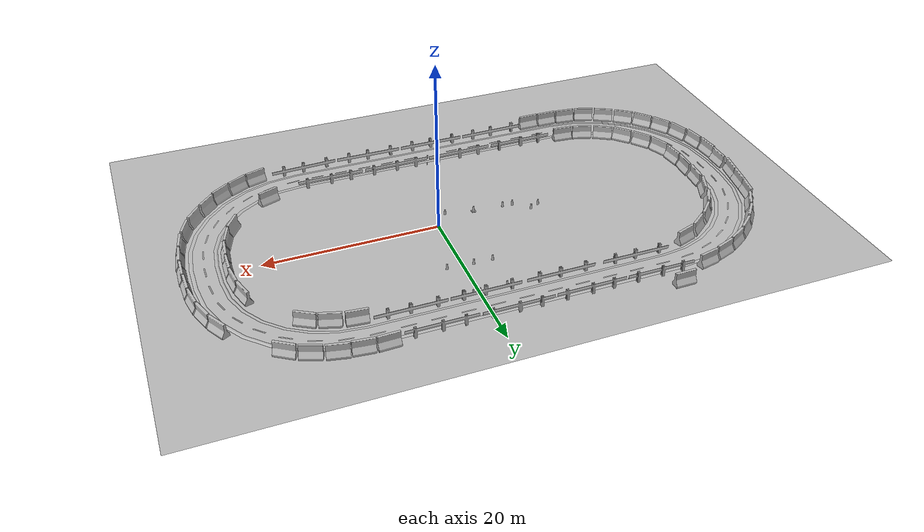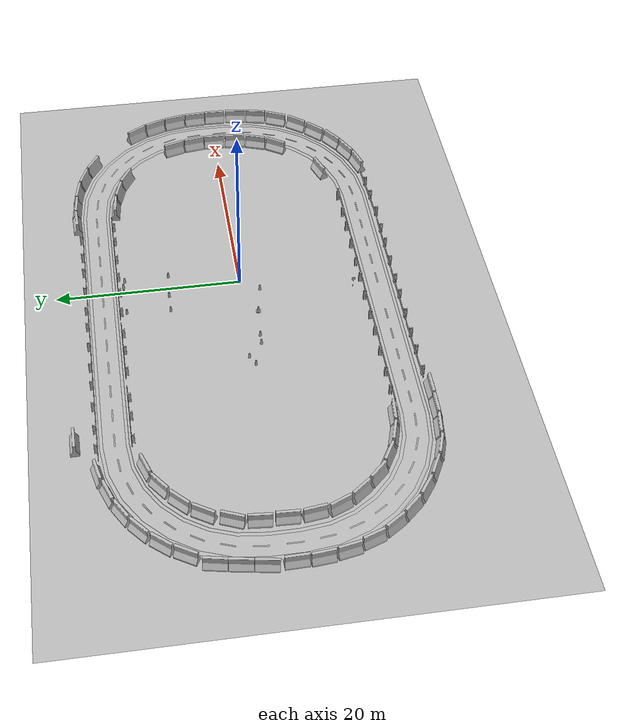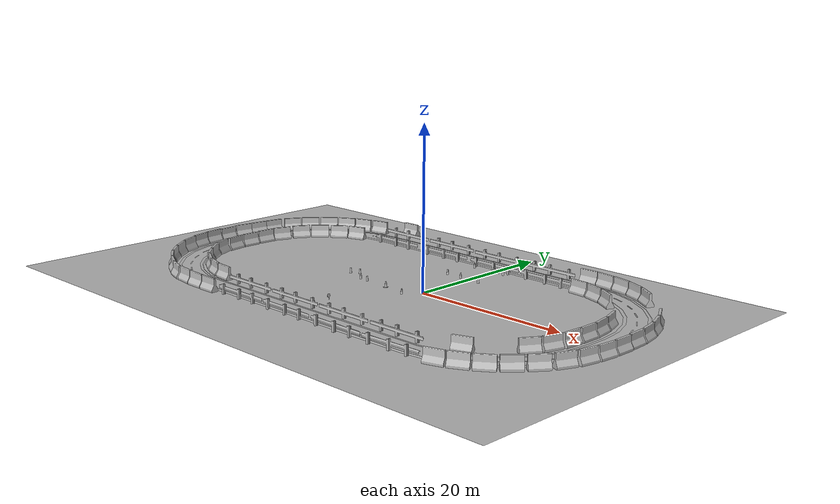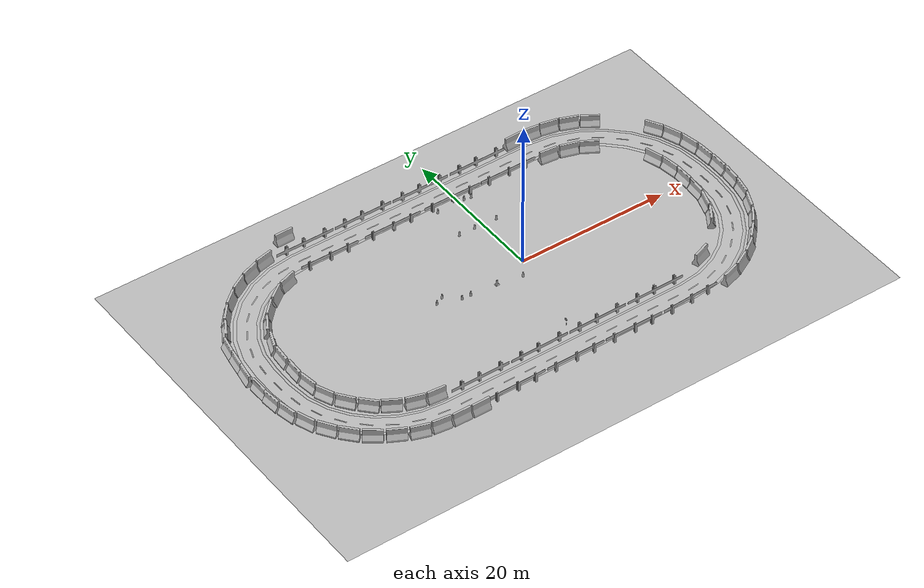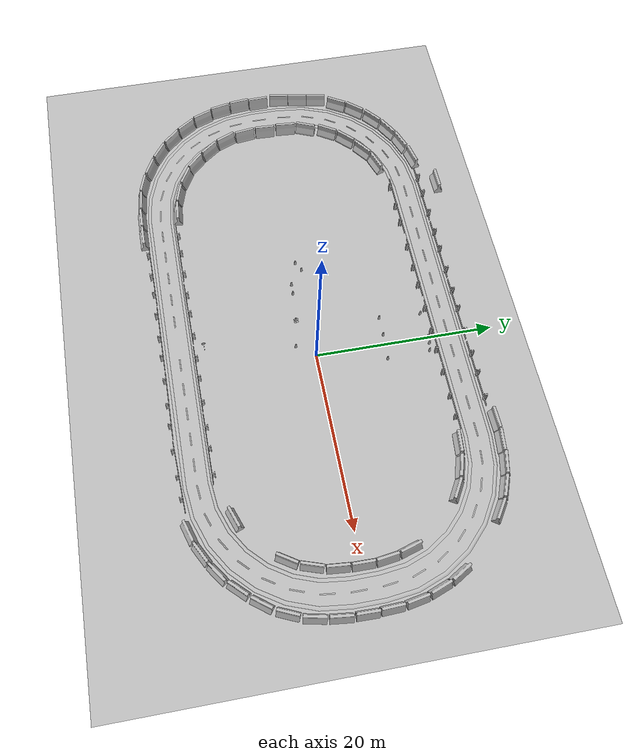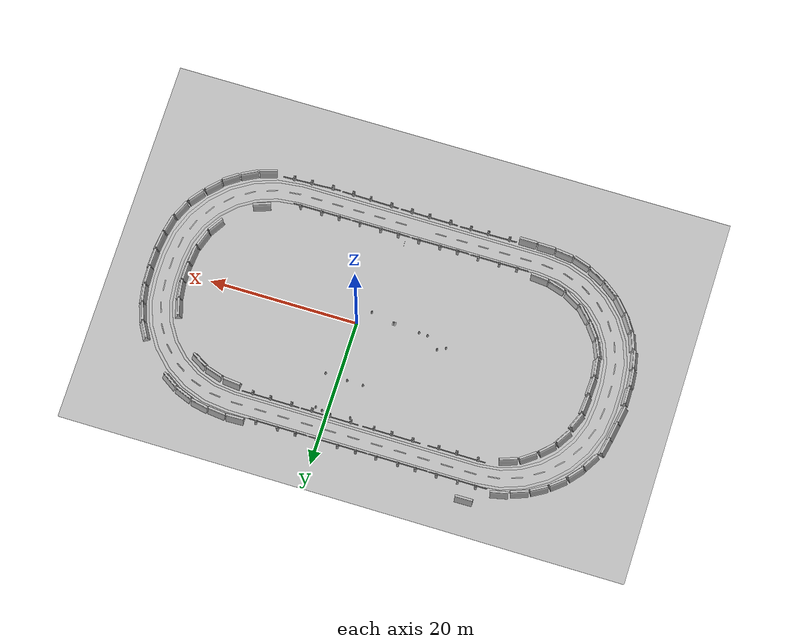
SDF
<sdf version="1.6">
 <world name="default">
  <gravity>0 0 -9.8</gravity>
  <magnetic_field>6e-06 2.3e-05 -4.2e-05</magnetic_field>
  <atmosphere type="adiabatic"/>
  <physics name="default_physics" default="0" type="ode">
   <max_step_size>0.001</max_step_size>
   <real_time_factor>1</real_time_factor>
   <real_time_update_rate>1000</real_time_update_rate>
  </physics>
  <scene><ambient>0.4 0.4 0.4 1</ambient><background>0.7 0.7 0.7 1</background><shadows>1</shadows></scene>
  <spherical_coordinates>
   <surface_model>EARTH_WGS84</surface_model>
   <latitude_deg>0</latitude_deg>
   <longitude_deg>0</longitude_deg>
   <elevation>0</elevation>
   <heading_deg>0</heading_deg>
  </spherical_coordinates>
  <model name="aws_robomaker_racetrack_Fence_01_00">
   <include><uri>model://aws_robomaker_racetrack_Fence_01</uri></include>
   <pose>7.552996 13.158695 0 0 0 -1.57272</pose>
  </model>
  <model name="aws_robomaker_racetrack_Fence_01_01">
   <include><uri>model://aws_robomaker_racetrack_Fence_01</uri></include>
   <pose>-0.500271 13.158695 0 0 0 -1.57272</pose>
  </model>
  <model name="aws_robomaker_racetrack_Fence_01_02">
   <include><uri>model://aws_robomaker_racetrack_Fence_01</uri></include>
   <pose>-8.897229 13.158695 0 0 0 -1.57272</pose>
  </model>
  <model name="aws_robomaker_racetrack_Fence_01_03">
   <include><uri>model://aws_robomaker_racetrack_Fence_01</uri></include>
   <pose>-17.681196 13.158695 0 0 0 -1.57272</pose>
  </model>
  <model name="aws_robomaker_racetrack_Fence_01_04">
   <include><uri>model://aws_robomaker_racetrack_Fence_01</uri></include>
   <pose>-12.990376 -16.857170 0.054 -0.0 0.0 -1.558614</pose>
  </model>
  <model name="aws_robomaker_racetrack_Fence_01_05">
   <include><uri>model://aws_robomaker_racetrack_Fence_01</uri></include>
   <pose>-4.880881 -16.849474 0.054  0 0 -1.572721</pose>
  </model>
  <model name="aws_robomaker_racetrack_Fence_01_06">
   <include><uri>model://aws_robomaker_racetrack_Fence_01</uri></include>
   <pose>3.247635 -16.899557 0.054  0 0 -1.581650</pose>
  </model>
  <model name="aws_robomaker_racetrack_Fence_01_07">
   <include><uri>model://aws_robomaker_racetrack_Fence_01</uri></include>
   <pose>11.364270 -16.813890 0.054  0.0 0.0 -1.525504</pose>
  </model>
  <model name="aws_robomaker_racetrack_Fence_01_08">
   <include><uri>model://aws_robomaker_racetrack_Fence_01</uri></include>
   <pose>-15.529042 -13.134610 0.054 0 -0 1.57158</pose>
  </model>
  <model name="aws_robomaker_racetrack_Fence_01_09">
   <include><uri>model://aws_robomaker_racetrack_Fence_01</uri></include>
   <pose>-7.391050 -13.134610 0.054651 0 0.0 1.580400</pose>
  </model>
  <model name="aws_robomaker_racetrack_Fence_01_10">
   <include><uri>model://aws_robomaker_racetrack_Fence_01</uri></include>
   <pose>0.720398 -13.134610 0.054671 0 -0 1.57158</pose>
  </model>
  <model name="aws_robomaker_racetrack_Fence_01_11">
   <include><uri>model://aws_robomaker_racetrack_Fence_01</uri></include>
   <pose>8.89898 -13.134610 0.054638 0.0 0.0 1.572679</pose>
  </model>
  <model name="aws_robomaker_racetrack_Fence_01_12">
   <include><uri>model://aws_robomaker_racetrack_Fence_01</uri></include>
   <pose>-18.882746 16.818918 0.054  0 -0 1.57158</pose>
  </model>
  <model name="aws_robomaker_racetrack_Fence_01_13">
   <include><uri>model://aws_robomaker_racetrack_Fence_01</uri></include>
   <pose>-10.776134 16.818918 0.054  0 -0 1.57158</pose>
  </model>
  <model name="aws_robomaker_racetrack_Fence_01_14">
   <include><uri>model://aws_robomaker_racetrack_Fence_01</uri></include>
   <pose>-2.679413 16.818918 0 0 -0 1.57158</pose>
  </model>
  <model name="aws_robomaker_racetrack_Fence_01_15">
   <include><uri>model://aws_robomaker_racetrack_Fence_01</uri></include>
   <pose>5.475008 16.818918 0.054  0 -0 1.57158</pose>
  </model>
  <model name="aws_robomaker_racetrack_StonePier_01_00">
   <include><uri>model://aws_robomaker_racetrack_StonePier_01</uri></include>
   <pose>-21.1732 -12.7799 0.054 0 -0 -0.086667</pose>
  </model>
  <model name="aws_robomaker_racetrack_StonePier_01_01">
   <include><uri>model://aws_robomaker_racetrack_StonePier_01</uri></include>
   <pose>-23.6727 -12.2854 0.054 0 -0.0 -0.301631</pose>
  </model>
  <model name="aws_robomaker_racetrack_StonePier_01_03">
   <include><uri>model://aws_robomaker_racetrack_StonePier_01</uri></include>
   <pose>-24.2891 12.2118 0.054 0 -0 0.334226</pose>
  </model>
  <model name="aws_robomaker_racetrack_StonePier_01_04">
   <include><uri>model://aws_robomaker_racetrack_StonePier_01</uri></include>
   <pose>-20.3219 18.8912 0.054 0 -0.0 0.009742</pose>
  </model>
  <model name="aws_robomaker_racetrack_StonePier_01_05">
   <include><uri>model://aws_robomaker_racetrack_StonePier_01</uri></include>
   <pose>11.0892 17.2043 0.054 0 -0.0 0.029389</pose>
  </model>
  <model name="aws_robomaker_racetrack_StonePier_01_06">
   <include><uri>model://aws_robomaker_racetrack_StonePier_01</uri></include>
   <pose>13.5633 17.1121 0.054 0 -0.0 -0.108086</pose>
  </model>
  <model name="aws_robomaker_racetrack_StonePier_01_07">
   <include><uri>model://aws_robomaker_racetrack_StonePier_01</uri></include>
   <pose>16.0013 16.8104 0.054 0 -0.0 -0.206147</pose>
  </model>
  <model name="aws_robomaker_racetrack_StonePier_01_08">
   <include><uri>model://aws_robomaker_racetrack_StonePier_01</uri></include>
   <pose>18.4263 16.0384 0.054 0 -0.0 -0.379591</pose>
  </model>
  <model name="aws_robomaker_racetrack_StonePier_01_09">
   <include><uri>model://aws_robomaker_racetrack_StonePier_01</uri></include>
   <pose>17.8323 11.1467 0.054 0 -0.0 -0.536699</pose>
  </model>
  <model name="aws_robomaker_racetrack_StonePier_01_10">
   <include><uri>model://aws_robomaker_racetrack_StonePier_01</uri></include>
   <pose>22.7563 5.03589 0.054 0 -0.0 -1.28348</pose>
  </model>
  <model name="aws_robomaker_racetrack_StonePier_01_11">
   <include><uri>model://aws_robomaker_racetrack_StonePier_01</uri></include>
   <pose>23.2964 2.57509 0.054 -0 -0.0 -1.43498</pose>
  </model>
  <model name="aws_robomaker_racetrack_StonePier_01_12">
   <include><uri>model://aws_robomaker_racetrack_StonePier_01</uri></include>
   <pose>23.4326 0.10745 0.054 -0 -0.0 -1.58404</pose>
  </model>
  <model name="aws_robomaker_racetrack_StonePier_01_13">
   <include><uri>model://aws_robomaker_racetrack_StonePier_01</uri></include>
   <pose>23.2774 -2.40527 0.054 0 -0.0 -1.65922</pose>
  </model>
  <model name="aws_robomaker_racetrack_StonePier_01_14">
   <include><uri>model://aws_robomaker_racetrack_StonePier_01</uri></include>
   <pose>22.705 -4.89186 0.054 -0 -0.0 -1.88566</pose>
  </model>
  <model name="aws_robomaker_racetrack_StonePier_01_15">
   <include><uri>model://aws_robomaker_racetrack_StonePier_01</uri></include>
   <pose>21.6688 -7.19526 0.054 0 -0.0 -2.13625</pose>
  </model>
  <model name="aws_robomaker_racetrack_StonePier_01_16">
   <include><uri>model://aws_robomaker_racetrack_StonePier_01</uri></include>
   <pose>28.1211 -0.475719 0.054 0 -0.0 -1.59506</pose>
  </model>
  <model name="aws_robomaker_racetrack_StonePier_01_17">
   <include><uri>model://aws_robomaker_racetrack_StonePier_01</uri></include>
   <pose>16.7061 -11.7058 0.054 -0 -0.0 -2.7953</pose>
  </model>
  <model name="aws_robomaker_racetrack_StonePier_01_18">
   <include><uri>model://aws_robomaker_racetrack_StonePier_01</uri></include>
   <pose>28.0027 -3.03906 0.054 0 -0.0 -1.68291</pose>
  </model>
  <model name="aws_robomaker_racetrack_StonePier_01_21">
   <include><uri>model://aws_robomaker_racetrack_StonePier_01</uri></include>
   <pose>17.2914 -16.4156 0.054 0 -0.0 0.298911</pose>
  </model>
  <model name="aws_robomaker_racetrack_StonePier_01_22">
   <include><uri>model://aws_robomaker_racetrack_StonePier_01</uri></include>
   <pose>19.6208 -15.4615 0.054 0 -0.0 0.489077</pose>
  </model>
  <model name="aws_robomaker_racetrack_StonePier_01_23">
   <include><uri>model://aws_robomaker_racetrack_StonePier_01</uri></include>
   <pose>21.7939 -14.1476 0.054 0 -0.0 0.61668</pose>
  </model>
  <model name="aws_robomaker_racetrack_StonePier_01_24">
   <include><uri>model://aws_robomaker_racetrack_StonePier_01</uri></include>
   <pose>23.6698 -12.3608 0.054 0 -0.0 0.810318</pose>
  </model>
  <model name="aws_robomaker_racetrack_StonePier_01_25">
   <include><uri>model://aws_robomaker_racetrack_StonePier_01</uri></include>
   <pose>25.3929 -10.3347 0.054 -0 -0.0 0.931507</pose>
  </model>
  <model name="aws_robomaker_racetrack_StonePier_01_26">
   <include><uri>model://aws_robomaker_racetrack_StonePier_01</uri></include>
   <pose>27.7466 4.53211 0.054 0 -0.0 1.75246</pose>
  </model>
  <model name="aws_robomaker_racetrack_StonePier_01_27">
   <include><uri>model://aws_robomaker_racetrack_StonePier_01</uri></include>
   <pose>27.0691 6.99271 0.054 0 -0.0 1.91654</pose>
  </model>
  <model name="aws_robomaker_racetrack_StonePier_01_28">
   <include><uri>model://aws_robomaker_racetrack_StonePier_01</uri></include>
   <pose>26.0366 9.29805 0.054 0 -0.0 2.08782</pose>
  </model>
  <model name="aws_robomaker_racetrack_StonePier_01_29">
   <include><uri>model://aws_robomaker_racetrack_StonePier_01</uri></include>
   <pose>26.7385 -7.99231 0.054 -0 -0.0 1.16098</pose>
  </model>
  <model name="aws_robomaker_racetrack_StonePier_01_30">
   <include><uri>model://aws_robomaker_racetrack_StonePier_01</uri></include>
   <pose>27.5962 -5.54706 0.054 0 -0.0 1.36231</pose>
  </model>
  <model name="aws_robomaker_racetrack_StonePier_01_31">
   <include><uri>model://aws_robomaker_racetrack_StonePier_01</uri></include>
   <pose>28.0314 1.9989 0.054 0 -0.0 -1.53351</pose>
  </model>
  <model name="aws_robomaker_racetrack_StonePier_01_32">
   <include><uri>model://aws_robomaker_racetrack_StonePier_01</uri></include>
   <pose>20.6714 14.8473 0.054 0 -0.0 -0.587598</pose>
  </model>
  <model name="aws_robomaker_racetrack_StonePier_01_33">
   <include><uri>model://aws_robomaker_racetrack_StonePier_01</uri></include>
   <pose>12.9654 12.6879 0.054 0 -0.0 -0.096781</pose>
  </model>
  <model name="aws_robomaker_racetrack_StonePier_01_34">
   <include><uri>model://aws_robomaker_racetrack_StonePier_01</uri></include>
   <pose>15.5357 12.1477 0.054 -0 0.00036 -0.29956</pose>
  </model>
  <model name="aws_robomaker_racetrack_StonePier_01_36">
   <include><uri>model://aws_robomaker_racetrack_StonePier_01</uri></include>
   <pose>-26.5946 11.0295 0.054 0 0.00036 0.646791</pose>
  </model>
  <model name="aws_robomaker_racetrack_StonePier_01_37">
   <include><uri>model://aws_robomaker_racetrack_StonePier_01</uri></include>
   <pose>-24.4271 16.8105 0.054 -0 -0.0 0.217772</pose>
  </model>
  <model name="aws_robomaker_racetrack_StonePier_01_38">
   <include><uri>model://aws_robomaker_racetrack_StonePier_01</uri></include>
   <pose>-28.6752 9.30494 0.054 0 -0.0 0.789682</pose>
  </model>
  <model name="aws_robomaker_racetrack_StonePier_01_39">
   <include><uri>model://aws_robomaker_racetrack_StonePier_01</uri></include>
   <pose>-30.2584 7.24451 0.054 -0 -0.0 1.02306</pose>
  </model>
  <model name="aws_robomaker_racetrack_StonePier_01_40">
   <include><uri>model://aws_robomaker_racetrack_StonePier_01</uri></include>
   <pose>-18.3212 -17.1986 0.054 0 -0.0 -0.000165</pose>
  </model>
  <model name="aws_robomaker_racetrack_StonePier_01_41">
   <include><uri>model://aws_robomaker_racetrack_StonePier_01</uri></include>
   <pose>-26.1157 -11.2238 0.054 0 -0.0 -0.528829</pose>
  </model>
  <model name="aws_robomaker_racetrack_StonePier_01_42">
   <include><uri>model://aws_robomaker_racetrack_StonePier_01</uri></include>
   <pose>-28.1466 -9.75745 0.054 0 -0.0 -0.811127</pose>
  </model>
  <model name="aws_robomaker_racetrack_StonePier_01_43">
   <include><uri>model://aws_robomaker_racetrack_StonePier_01</uri></include>
   <pose>-29.8572 -7.79098 0.054 0 -0.0 -0.924577</pose>
  </model>
  <model name="aws_robomaker_racetrack_StonePier_01_44">
   <include><uri>model://aws_robomaker_racetrack_StonePier_01</uri></include>
   <pose>-31.1336 -5.56451 0.054 0 -0.0 -1.16956</pose>
  </model>
  <model name="aws_robomaker_racetrack_StonePier_01_45">
   <include><uri>model://aws_robomaker_racetrack_StonePier_01</uri></include>
   <pose>-31.6395 -3.07904 0.054 -0 -0.0 -1.43795</pose>
  </model>
  <model name="aws_robomaker_racetrack_StonePier_01_46">
   <include><uri>model://aws_robomaker_racetrack_StonePier_01</uri></include>
   <pose>-31.7709 -0.48849 0.054 0 -0.0 -1.61074</pose>
  </model>
  <model name="aws_robomaker_racetrack_StonePier_01_47">
   <include><uri>model://aws_robomaker_racetrack_StonePier_01</uri></include>
   <pose>-31.7363 2.12666 0.054 0 -0.0 -1.64853</pose>
  </model>
  <model name="aws_robomaker_racetrack_StonePier_01_48">
   <include><uri>model://aws_robomaker_racetrack_StonePier_01</uri></include>
   <pose>-31.2901 4.63965 0.054 -0 -0.0 -1.9545</pose>
  </model>
  <model name="aws_robomaker_racetrack_StonePier_01_52">
   <include><uri>model://aws_robomaker_racetrack_StonePier_01</uri></include>
   <pose>-28.2666 -15.3279 0.054 0 0.00036 -0.483595</pose>
  </model>
  <model name="aws_robomaker_racetrack_StonePier_01_53">
   <include><uri>model://aws_robomaker_racetrack_StonePier_01</uri></include>
   <pose>-30.4813 -13.931 0.054 0 -0.0 2.50624</pose>
  </model>
  <model name="aws_robomaker_racetrack_StonePier_01_54">
   <include><uri>model://aws_robomaker_racetrack_StonePier_01</uri></include>
   <pose>-32.3931 -12.181 0.054 0 -0.0 2.30053</pose>
  </model>
  <model name="aws_robomaker_racetrack_StonePier_01_55">
   <include><uri>model://aws_robomaker_racetrack_StonePier_01</uri></include>
   <pose>-33.9725 -10.1825 0.054 0 -0.0 2.15404</pose>
  </model>
  <model name="aws_robomaker_racetrack_StonePier_01_56">
   <include><uri>model://aws_robomaker_racetrack_StonePier_01</uri></include>
   <pose>-35.2144 -7.92381 0.054 0 -0.0 1.91826</pose>
  </model>
  <model name="aws_robomaker_racetrack_StonePier_01_57">
   <include><uri>model://aws_robomaker_racetrack_StonePier_01</uri></include>
   <pose>-36.4999 -3.03273 0.054 -0 0.00036 -1.47965</pose>
  </model>
  <model name="aws_robomaker_racetrack_StonePier_01_58">
   <include><uri>model://aws_robomaker_racetrack_StonePier_01</uri></include>
   <pose>-36.5369 -0.578473 -0.000468 -0 0.000348 1.59189</pose>
  </model>
  <model name="aws_robomaker_racetrack_StonePier_01_59">
   <include><uri>model://aws_robomaker_racetrack_StonePier_01</uri></include>
   <pose>-36.0789 -5.53149 0.054 0 -0.0 1.76121</pose>
  </model>
  <model name="aws_robomaker_racetrack_StonePier_01_60">
   <include><uri>model://aws_robomaker_racetrack_StonePier_01</uri></include>
   <pose>-36.5742 2.13483 -4.9e-05 -4.8e-05 -6.2e-05 1.40891</pose>
  </model>
  <model name="aws_robomaker_racetrack_StonePier_01_61">
   <include><uri>model://aws_robomaker_racetrack_StonePier_01</uri></include>
   <pose>-36.1891 4.48288 0.000698 -7e-05 -0.000662 1.40758</pose>
  </model>
  <model name="aws_robomaker_racetrack_StonePier_01_62">
   <include><uri>model://aws_robomaker_racetrack_StonePier_01</uri></include>
   <pose>-35.7706 6.79941 0.00067 5.5e-05 0.000534 1.37633</pose>
  </model>
  <model name="aws_robomaker_racetrack_StonePier_01_63">
   <include><uri>model://aws_robomaker_racetrack_StonePier_01</uri></include>
   <pose>-34.5101 9.28526 0.054 0 -0.0 1.03684</pose>
  </model>
  <model name="aws_robomaker_racetrack_StonePier_01_64">
   <include><uri>model://aws_robomaker_racetrack_StonePier_01</uri></include>
   <pose>-33.1083 11.4014 0.054 0 -0.0 0.877747</pose>
  </model>
  <model name="aws_robomaker_racetrack_StonePier_01_65">
   <include><uri>model://aws_robomaker_racetrack_StonePier_01</uri></include>
   <pose>-31.2882 13.312 0.054 -0 -0.0 0.701782</pose>
  </model>
  <model name="aws_robomaker_racetrack_StonePier_01_66">
   <include><uri>model://aws_robomaker_racetrack_StonePier_01</uri></include>
   <pose>-29.1909 14.829 0.054 0 -0.0 0.529025</pose>
  </model>
  <model name="aws_robomaker_racetrack_StonePier_01_67">
   <include><uri>model://aws_robomaker_racetrack_StonePier_01</uri></include>
   <pose>-26.9181 15.9588 0.054 0 -0.0 0.349577</pose>
  </model>
  <model name="aws_robomaker_racetrack_StonePier_01_68">
   <include><uri>model://aws_robomaker_racetrack_StonePier_01</uri></include>
   <pose>-20.8526 -17.1365 0.054 -0 0.00036 -0.016586</pose>
  </model>
  <model name="aws_robomaker_racetrack_StonePier_01_69">
   <include><uri>model://aws_robomaker_racetrack_StonePier_01</uri></include>
   <pose>-23.3756 -16.9024 0.054 0 -0.0 -0.119704</pose>
  </model>
  <model name="aws_robomaker_racetrack_StonePier_01_70">
   <include><uri>model://aws_robomaker_racetrack_StonePier_01</uri></include>
   <pose>-25.8909 -16.4126 0.054 0 -0.0 -0.32217</pose>
  </model>
  <model name="aws_robomaker_racetrack_StopSign_01_00">
   <include><uri>model://aws_robomaker_racetrack_StopSign_01</uri></include>
   <pose>-2.7487 -12.1054 0.000775 0.075944 0.005053 -1.56731</pose>
  </model>
  <model name="aws_robomaker_racetrack_Track_05_00">
   <include><uri>model://aws_robomaker_racetrack_Track_05</uri></include>
   <pose>0 0 0.051 0 -0 0</pose>
  </model>
  <model name="aws_robomaker_racetrack_Trackline_01_00">
   <include><uri>model://aws_robomaker_racetrack_Trackline_01</uri></include>
   <pose>-4.24539 0 0.102 0 -0 0</pose>
  </model>
  <model name="aws_robomaker_racetrack_TrafficCone_01_00">
   <include><uri>model://aws_robomaker_racetrack_TrafficCone_01</uri></include>
   <pose>-9.379170 -1.123267 0 0 -0 0</pose>
  </model>
  <model name="aws_robomaker_racetrack_TrafficCone_01_01">
   <include><uri>model://aws_robomaker_racetrack_TrafficCone_01</uri></include>
   <pose>-12.1926 -0.169504 0 0 -0 0</pose>
  </model>
  <model name="aws_robomaker_racetrack_TrafficCone_01_02">
   <include><uri>model://aws_robomaker_racetrack_TrafficCone_01</uri></include>
   <pose>-11.1147 0.36652 0 0 -0 0</pose>
  </model>
  <model name="aws_robomaker_racetrack_TrafficCone_01_03">
   <include><uri>model://aws_robomaker_racetrack_TrafficCone_01</uri></include>
   <pose>-8.204195 -1.168056 0 0 -0 0</pose>
  </model>
  <model name="aws_robomaker_racetrack_TrafficCone_01_05">
   <include><uri>model://aws_robomaker_racetrack_TrafficCone_01</uri></include>
   <pose>1.63274 12.4879 0 0 -0 0</pose>
  </model>
  <model name="aws_robomaker_racetrack_TrafficCone_01_06">
   <include><uri>model://aws_robomaker_racetrack_TrafficCone_01</uri></include>
   <pose>0.741449 12.6798 0 0 -0 0</pose>
  </model>
  <model name="aws_robomaker_racetrack_TrafficCone_01_07">
   <include><uri>model://aws_robomaker_racetrack_TrafficCone_01</uri></include>
   <pose>-0.041804 12.6793 0 0 -0 0</pose>
  </model>
  <model name="aws_robomaker_racetrack_TrafficCone_01_08">
   <include><uri>model://aws_robomaker_racetrack_TrafficCone_01</uri></include>
   <pose>-1.478687 -2.047922 0 0 0 0</pose>
  </model>
  <model name="aws_robomaker_racetrack_TrafficCone_01_09">
   <include><uri>model://aws_robomaker_racetrack_TrafficCone_01</uri></include>
   <pose>-3.07094 12.5681 0 0 -0 0</pose>
  </model>
  <model name="aws_robomaker_racetrack_TrafficCone_01_10">
   <include><uri>model://aws_robomaker_racetrack_TrafficCone_01</uri></include>
   <pose>-4.721023 -1.439288 0.054 0 -0 0</pose>
  </model>
  <model name="aws_robomaker_racetrack_TrafficCone_01_11">
   <include><uri>model://aws_robomaker_racetrack_TrafficCone_01</uri></include>
   <pose>-1.18613 7.84487 0 0 -0 0</pose>
  </model>
  <model name="aws_robomaker_racetrack_TrafficCone_01_12">
   <include><uri>model://aws_robomaker_racetrack_TrafficCone_01</uri></include>
   <pose>-3.3402 7.8678 0 0 -0 0</pose>
  </model>
  <model name="aws_robomaker_racetrack_TrafficCone_01_13">
   <include><uri>model://aws_robomaker_racetrack_TrafficCone_01</uri></include>
   <pose>1.78217 7.69024 0 0 -0 0</pose>
  </model>
  <model name="aws_robomaker_racetrack_Ground_01_00">
   <include><uri>model://aws_robomaker_racetrack_Ground_01</uri></include>
   <pose>-4.9 -2 0.05 0 -0 0</pose>
  </model>
  <model name="ground_plane">
   <pose>0 0 -1 0 -0 0</pose>
   <scale>1 1 1</scale>
   <link name="link">
    <pose>0 0 -1 0 -0 0</pose>
    <velocity>0 0 0 0 -0 0</velocity>
    <acceleration>0 0 0 0 -0 0</acceleration>
   </link>
  </model>
  <light name="sun" type="directional">
   <pose>0 0 10 0 0 0</pose>
   <diffuse>1 1 1 1</diffuse>
   <specular>1 1 1 1</specular>
   <attenuation>
    <range>1000</range>
    <constant>0.9</constant>
    <linear>0.01</linear>
    <quadratic>0.001</quadratic>
   </attenuation>
   <direction>-0.5 0.1 -0.9</direction>
  </light>
  <light name="sun2" type="directional">
   <pose>0 0 10 0 0 0</pose>
   <diffuse>1 1 1 1</diffuse>
   <specular>1 1 1 1</specular>
   <attenuation>
    <range>1000</range>
    <constant>0.9</constant>
    <linear>0.01</linear>
    <quadratic>0.001</quadratic>
   </attenuation>
   <direction>-0.5 0.1 -0.9</direction>
  </light>
 </world>
</sdf>

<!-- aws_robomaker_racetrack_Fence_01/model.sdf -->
<sdf version='1.6'>
  <model name='aws_Fence_01'>
    <link name='body'>
      <pose frame=''>0 0 0 0 -0 0</pose>
      <self_collide>0</self_collide>
      <kinematic>0</kinematic>
      <gravity>1</gravity>
      <inertial>
        <mass>5</mass>
        <pose frame=''>0 0 0 0 -0 0</pose>
        <inertia>
          <ixx>1</ixx>
          <ixy>0</ixy>
          <ixz>0</ixz>
          <iyy>1</iyy>
          <iyz>0</iyz>
          <izz>1</izz>
        </inertia>
      </inertial>
      <visual name='visual'>
        <geometry>
          <mesh>
            <uri>file://models/aws_robomaker_racetrack_Fence_01/meshes/aws_Fence_01_visual.obj</uri>
            <scale>0.01 0.01 0.01</scale>
          </mesh>
        </geometry>
        <material>
          <shader type='pixel'>
            <normal_map>__default__</normal_map>
          </shader>
        </material>
        <pose frame=''>0 0 0 0 -0 0</pose>
        <cast_shadows>1</cast_shadows>
        <transparency>0</transparency>
        <meta>
          <layer>0</layer>
        </meta>
      </visual>
      <collision name='collision_0'>
        <laser_retro>0</laser_retro>
        <max_contacts>10</max_contacts>
        <pose frame=''>0 0 0 0 -0 0</pose>
        <geometry>
          <mesh>
            <uri>file://models/aws_robomaker_racetrack_Fence_01/meshes/aws_Fence_01_collision.obj</uri>
            <scale>0.01 0.01 0.01</scale>
          </mesh>
        </geometry>
        <surface>
          <friction>
            <ode>
              <mu>1</mu>
              <mu2>1</mu2>
              <fdir1>0 0 0</fdir1>
              <slip1>0</slip1>
              <slip2>0</slip2>
            </ode>
            <torsional>
              <coefficient>1</coefficient>
              <patch_radius>0</patch_radius>
              <surface_radius>0</surface_radius>
              <use_patch_radius>1</use_patch_radius>
              <ode>
                <slip>0</slip>
              </ode>
            </torsional>
          </friction>
          <bounce>
            <restitution_coefficient>0</restitution_coefficient>
            <threshold>1e+06</threshold>
          </bounce>
          <contact>
            <collide_without_contact>0</collide_without_contact>
            <collide_without_contact_bitmask>1</collide_without_contact_bitmask>
            <collide_bitmask>1</collide_bitmask>
            <ode>
              <soft_cfm>0</soft_cfm>
              <soft_erp>0.2</soft_erp>
              <kp>1e+13</kp>
              <kd>1</kd>
              <max_vel>0.01</max_vel>
              <min_depth>0</min_depth>
            </ode>
            <bullet>
              <split_impulse>1</split_impulse>
              <split_impulse_penetration_threshold>-0.01</split_impulse_penetration_threshold>
              <soft_cfm>0</soft_cfm>
              <soft_erp>0.2</soft_erp>
              <kp>1e+13</kp>
              <kd>1</kd>
            </bullet>
          </contact>
        </surface>
      </collision>
    </link>
<static>true</static>
  </model>
</sdf>

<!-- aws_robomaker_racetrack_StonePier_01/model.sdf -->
<sdf version='1.6'>
  <model name='aws_StonePier_01'>
    <link name='body'>
      <pose frame=''>0 0 0 0 -0 0</pose>
      <self_collide>0</self_collide>
      <kinematic>0</kinematic>
      <gravity>1</gravity>
      <inertial>
        <mass>10</mass>
        <pose frame=''>0 0 0 0 -0 0</pose>
        <inertia>
          <ixx>0</ixx>
          <ixy>0</ixy>
          <ixz>0</ixz>
          <iyy>0</iyy>
          <iyz>0</iyz>
          <izz>0</izz>
        </inertia>
      </inertial>
      <visual name='visual'>
        <geometry>
          <mesh>
            <uri>file://models/aws_robomaker_racetrack_StonePier_01/meshes/aws_StonePier_01_visual.obj</uri>
            <scale>0.01 0.01 0.01</scale>
          </mesh>
        </geometry>
        <material>
          <shader type='pixel'>
            <normal_map>__default__</normal_map>
          </shader>
        </material>
        <pose frame=''>0 0 0 0 -0 0</pose>
        <cast_shadows>1</cast_shadows>
        <transparency>0</transparency>
        <meta>
          <layer>0</layer>
        </meta>
      </visual>
      <collision name='collision_0'>
        <laser_retro>0</laser_retro>
        <max_contacts>10</max_contacts>
        <pose frame=''>0 0 0 0 -0 0</pose>
        <geometry>
          <mesh>
            <uri>file://models/aws_robomaker_racetrack_StonePier_01/meshes/aws_StonePier_01_collision.obj</uri>
            <scale>0.01 0.01 0.01</scale>
          </mesh>
        </geometry>
        <surface>
          <friction>
            <ode>
              <mu>1</mu>
              <mu2>1</mu2>
              <fdir1>0 0 0</fdir1>
              <slip1>0</slip1>
              <slip2>0</slip2>
            </ode>
            <torsional>
              <coefficient>1</coefficient>
              <patch_radius>0</patch_radius>
              <surface_radius>0</surface_radius>
              <use_patch_radius>1</use_patch_radius>
              <ode>
                <slip>0</slip>
              </ode>
            </torsional>
          </friction>
          <bounce>
            <restitution_coefficient>0</restitution_coefficient>
            <threshold>1e+06</threshold>
          </bounce>
          <contact>
            <collide_without_contact>0</collide_without_contact>
            <collide_without_contact_bitmask>1</collide_without_contact_bitmask>
            <collide_bitmask>1</collide_bitmask>
            <ode>
              <soft_cfm>0</soft_cfm>
              <soft_erp>0.2</soft_erp>
              <kp>1e+13</kp>
              <kd>1</kd>
              <max_vel>0.01</max_vel>
              <min_depth>0</min_depth>
            </ode>
            <bullet>
              <split_impulse>1</split_impulse>
              <split_impulse_penetration_threshold>-0.01</split_impulse_penetration_threshold>
              <soft_cfm>0</soft_cfm>
              <soft_erp>0.2</soft_erp>
              <kp>1e+13</kp>
              <kd>1</kd>
            </bullet>
          </contact>
        </surface>
      </collision>
    </link>
  <static>1</static>
  </model>
</sdf>

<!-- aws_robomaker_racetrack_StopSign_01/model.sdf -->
<sdf version='1.6'>
  <model name='aws_StopSign_01'>
    <link name='body'>
      <pose frame=''>0 0 0 0 -0 0</pose>
      <self_collide>0</self_collide>
      <kinematic>0</kinematic>
      <gravity>1</gravity>
      <inertial>
        <mass>2</mass>
        <pose frame=''>0 0 0 0 -0 0</pose>
        <inertia>
          <ixx>1</ixx>
          <ixy>0</ixy>
          <ixz>0</ixz>
          <iyy>1</iyy>
          <iyz>0</iyz>
          <izz>1</izz>
        </inertia>
      </inertial>
      <visual name='visual'>
        <geometry>
          <mesh>
            <uri>file://models/aws_robomaker_racetrack_StopSign_01/meshes/aws_StopSign_01_visual.obj</uri>
            <scale>0.01 0.01 0.01</scale>
          </mesh>
        </geometry>
        <material>
          <shader type='pixel'>
            <normal_map>__default__</normal_map>
          </shader>
        </material>
        <pose frame=''>0 0 0 0 -0 0</pose>
        <cast_shadows>1</cast_shadows>
        <transparency>0</transparency>
        <meta>
          <layer>0</layer>
        </meta>
      </visual>
      <collision name='collision_0'>
        <laser_retro>0</laser_retro>
        <max_contacts>10</max_contacts>
        <pose frame=''>0 0 0 0 -0 0</pose>
        <geometry>
          <mesh>
            <uri>file://models/aws_robomaker_racetrack_StopSign_01/meshes/aws_StopSign_01_collision.obj</uri>
            <scale>0.01 0.01 0.01</scale>
          </mesh>
        </geometry>
        <surface>
          <friction>
            <ode>
              <mu>1</mu>
              <mu2>1</mu2>
              <fdir1>0 0 0</fdir1>
              <slip1>0</slip1>
              <slip2>0</slip2>
            </ode>
            <torsional>
              <coefficient>1</coefficient>
              <patch_radius>0</patch_radius>
              <surface_radius>0</surface_radius>
              <use_patch_radius>1</use_patch_radius>
              <ode>
                <slip>0</slip>
              </ode>
            </torsional>
          </friction>
          <bounce>
            <restitution_coefficient>0</restitution_coefficient>
            <threshold>1e+06</threshold>
          </bounce>
          <contact>
            <collide_without_contact>0</collide_without_contact>
            <collide_without_contact_bitmask>1</collide_without_contact_bitmask>
            <collide_bitmask>1</collide_bitmask>
            <ode>
              <soft_cfm>0</soft_cfm>
              <soft_erp>0.2</soft_erp>
              <kp>1e+13</kp>
              <kd>1</kd>
              <max_vel>0.01</max_vel>
              <min_depth>0</min_depth>
            </ode>
            <bullet>
              <split_impulse>1</split_impulse>
              <split_impulse_penetration_threshold>-0.01</split_impulse_penetration_threshold>
              <soft_cfm>0</soft_cfm>
              <soft_erp>0.2</soft_erp>
              <kp>1e+13</kp>
              <kd>1</kd>
            </bullet>
          </contact>
        </surface>
      </collision>
    </link>
    <static>true</static>
  </model>
</sdf>

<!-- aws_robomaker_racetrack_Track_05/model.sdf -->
<sdf version='1.6'>

  <model name='aws_Track_05_border'>

     <link name='body_border'>
      <pose frame=''>0 0 0 0 -0 0</pose>
      <self_collide>0</self_collide>
      <kinematic>0</kinematic>
      <gravity>1</gravity>
      <inertial>
        <mass>1000</mass>
        <pose frame=''>0 0 0 0 -0 0</pose>
        <inertia>
          <ixx>1</ixx>
          <ixy>0</ixy>
          <ixz>0</ixz>
          <iyy>1</iyy>
          <iyz>0</iyz>
          <izz>1</izz>
        </inertia>
      </inertial>
      <visual name='visual'>
        <geometry>
          <mesh>
            <uri>file://models/aws_robomaker_racetrack_Track_05/meshes/aws_Track_05_visual_border.obj</uri>
            <scale>1 1 1</scale>
          </mesh>
        </geometry>
        <material>
          <shader type='pixel'>
            <normal_map>__default__</normal_map>
          </shader>
        </material>
        <pose frame=''>0 0 0 0 -0 0</pose>
        <cast_shadows>1</cast_shadows>
        <transparency>0</transparency>
        <meta>
          <layer>0</layer>
        </meta>
      </visual>

       <collision name='collision_0'>
        <laser_retro>0</laser_retro>
        <max_contacts>10</max_contacts>
        <pose frame=''>0 0 0 0 -0 0</pose>
        <geometry>
          <mesh>
            <uri>file://models/aws_robomaker_racetrack_Track_05/meshes/aws_Track_05_visual_border.obj</uri>
            <scale>1 1 1</scale>
          </mesh>
        </geometry>
        <surface>
          <friction>
            <ode>
              <mu>1</mu>
              <mu2>1</mu2>
              <fdir1>0 0 0</fdir1>
              <slip1>0</slip1>
              <slip2>0</slip2>
            </ode>
            <torsional>
              <coefficient>1</coefficient>
              <patch_radius>0</patch_radius>
              <surface_radius>0</surface_radius>
              <use_patch_radius>1</use_patch_radius>
              <ode>
                <slip>0</slip>
              </ode>
            </torsional>
          </friction>
          <bounce>
            <restitution_coefficient>0</restitution_coefficient>
            <threshold>1e+06</threshold>
          </bounce>
          <contact>
            <collide_without_contact>0</collide_without_contact>
            <collide_without_contact_bitmask>1</collide_without_contact_bitmask>
            <collide_bitmask>1</collide_bitmask>
            <ode>
              <soft_cfm>0</soft_cfm>
              <soft_erp>0.2</soft_erp>
              <kp>1e+13</kp>
              <kd>1</kd>
              <max_vel>0.01</max_vel>
              <min_depth>0</min_depth>
            </ode>
            <bullet>
              <split_impulse>1</split_impulse>
              <split_impulse_penetration_threshold>-0.01</split_impulse_penetration_threshold>
              <soft_cfm>0</soft_cfm>
              <soft_erp>0.2</soft_erp>
              <kp>1e+13</kp>
              <kd>1</kd>
            </bullet>
          </contact>
        </surface>
      </collision>

    </link>
  </model>

   <model name='aws_Track_05_border'>

     <link name='body_border'>
      <pose frame=''>0 0 0 0 -0 0</pose>
      <self_collide>0</self_collide>
      <kinematic>0</kinematic>
      <gravity>1</gravity>
      <inertial>
        <mass>1000</mass>
        <pose frame=''>0 0 0 0 -0 0</pose>
        <inertia>
          <ixx>1</ixx>
          <ixy>0</ixy>
          <ixz>0</ixz>
          <iyy>1</iyy>
          <iyz>0</iyz>
          <izz>1</izz>
        </inertia>
      </inertial>
      <visual name='visual'>
        <geometry>
          <mesh>
            <uri>file://models/aws_robomaker_racetrack_Track_05/meshes/aws_Track_05_visual_track.obj</uri>
            <scale>1 1 1</scale>
          </mesh>
        </geometry>
        <material>
          <shader type='pixel'>
            <normal_map>__default__</normal_map>
          </shader>
        </material>
        <pose frame=''>0 0 0 0 -0 0</pose>
        <cast_shadows>1</cast_shadows>
        <transparency>0</transparency>
        <meta>
          <layer>0</layer>
        </meta>
      </visual>
       <collision name='collision_0'>
        <laser_retro>0</laser_retro>
        <max_contacts>10</max_contacts>
        <pose frame=''>0 0 0 0 -0 0</pose>
        <geometry>
          <mesh>
            <uri>file://models/aws_robomaker_racetrack_Track_05/meshes/aws_Track_05_visual_track.obj</uri>
            <scale>1 1 1</scale>
          </mesh>
        </geometry>
        <surface>
          <friction>
            <ode>
              <mu>1</mu>
              <mu2>1</mu2>
              <fdir1>0 0 0</fdir1>
              <slip1>0</slip1>
              <slip2>0</slip2>
            </ode>
            <torsional>
              <coefficient>1</coefficient>
              <patch_radius>0</patch_radius>
              <surface_radius>0</surface_radius>
              <use_patch_radius>1</use_patch_radius>
              <ode>
                <slip>0</slip>
              </ode>
            </torsional>
          </friction>
          <bounce>
            <restitution_coefficient>0</restitution_coefficient>
            <threshold>1e+06</threshold>
          </bounce>
          <contact>
            <collide_without_contact>0</collide_without_contact>
            <collide_without_contact_bitmask>1</collide_without_contact_bitmask>
            <collide_bitmask>1</collide_bitmask>
            <ode>
              <soft_cfm>0</soft_cfm>
              <soft_erp>0.2</soft_erp>
              <kp>1e+13</kp>
              <kd>1</kd>
              <max_vel>0.01</max_vel>
              <min_depth>0</min_depth>
            </ode>
            <bullet>
              <split_impulse>1</split_impulse>
              <split_impulse_penetration_threshold>-0.01</split_impulse_penetration_threshold>
              <soft_cfm>0</soft_cfm>
              <soft_erp>0.2</soft_erp>
              <kp>1e+13</kp>
              <kd>1</kd>
            </bullet>
          </contact>
        </surface>
      </collision>
    </link>
  </model>
</sdf>

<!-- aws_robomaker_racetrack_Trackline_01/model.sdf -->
<sdf version='1.6'>
  <model name='aws_Trackline_01'>
    <link name='body'>
      <pose frame=''>0 0 0 0 -0 0</pose>
      <inertial>
        <mass>0.5</mass>
        <pose frame=''>0 0 0 0 -0 0</pose>
        <inertia>
          <ixx>1</ixx>
          <ixy>0</ixy>
          <ixz>0</ixz>
          <iyy>1</iyy>
          <iyz>0</iyz>
          <izz>1</izz>
        </inertia>
      </inertial>
      <self_collide>0</self_collide>
      <kinematic>0</kinematic>
      <gravity>1</gravity>
      <visual name='visual'>
        <geometry>
          <mesh>
            <uri>file://models/aws_robomaker_racetrack_Trackline_01/meshes/aws_Trackline_01_visual.obj</uri>
            <scale>0.01 0.01 0.01</scale>
          </mesh>
        </geometry>
        <material>
          <shader type='pixel'>
            <normal_map>__default__</normal_map>
          </shader>
        </material>
        <pose frame=''>0 0 0 0 -0 0</pose>
        <cast_shadows>1</cast_shadows>
        <transparency>0</transparency>
        <meta>
          <layer>0</layer>
        </meta>
      </visual>

    </link>
    <static>1</static>
  </model>
</sdf>

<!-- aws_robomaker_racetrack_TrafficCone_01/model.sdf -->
<sdf version='1.6'>
  <model name='aws_TrafficCone_01'>
    <link name='body'>
      <pose frame=''>0 0 0 0 -0 0</pose>
      <self_collide>0</self_collide>
      <kinematic>0</kinematic>
      <gravity>1</gravity>
      <inertial>
        <mass>0.5</mass>
        <pose frame=''>0 0 0 0 -0 0</pose>
        <inertia>
          <ixx>1</ixx>
          <ixy>0</ixy>
          <ixz>0</ixz>
          <iyy>1</iyy>
          <iyz>0</iyz>
          <izz>1</izz>
        </inertia>
      </inertial>
      <visual name='visual'>
        <geometry>
          <mesh>
            <uri>file://models/aws_robomaker_racetrack_TrafficCone_01/meshes/aws_TrafficCone_01_visual.obj</uri>
            <scale>0.01 0.01 0.01</scale>
          </mesh>
        </geometry>
        <material>
          <shader type='pixel'>
            <normal_map>__default__</normal_map>
          </shader>
        </material>
        <pose frame=''>0 0 0 0 -0 0</pose>
        <cast_shadows>1</cast_shadows>
        <transparency>0</transparency>
        <meta>
          <layer>0</layer>
        </meta>
      </visual>
      <collision name='collision_0'>
        <laser_retro>0</laser_retro>
        <max_contacts>10</max_contacts>
        <pose frame=''>0 0 0 0 -0 0</pose>
        <geometry>
          <mesh>
            <uri>file://models/aws_robomaker_racetrack_TrafficCone_01/meshes/aws_TrafficCone_01_coliision.obj</uri>
            <scale>0.01 0.01 0.01</scale>
          </mesh>
        </geometry>
        <surface>
          <friction>
            <ode>
              <mu>1</mu>
              <mu2>1</mu2>
              <fdir1>0 0 0</fdir1>
              <slip1>0</slip1>
              <slip2>0</slip2>
            </ode>
            <torsional>
              <coefficient>1</coefficient>
              <patch_radius>0</patch_radius>
              <surface_radius>0</surface_radius>
              <use_patch_radius>1</use_patch_radius>
              <ode>
                <slip>0</slip>
              </ode>
            </torsional>
          </friction>
          <bounce>
            <restitution_coefficient>0</restitution_coefficient>
            <threshold>1e+06</threshold>
          </bounce>
          <contact>
            <collide_without_contact>0</collide_without_contact>
            <collide_without_contact_bitmask>1</collide_without_contact_bitmask>
            <collide_bitmask>1</collide_bitmask>
            <ode>
              <soft_cfm>0</soft_cfm>
              <soft_erp>0.2</soft_erp>
              <kp>1e+13</kp>
              <kd>1</kd>
              <max_vel>0.01</max_vel>
              <min_depth>0</min_depth>
            </ode>
            <bullet>
              <split_impulse>1</split_impulse>
              <split_impulse_penetration_threshold>-0.01</split_impulse_penetration_threshold>
              <soft_cfm>0</soft_cfm>
              <soft_erp>0.2</soft_erp>
              <kp>1e+13</kp>
              <kd>1</kd>
            </bullet>
          </contact>
        </surface>
      </collision>
    </link>
    <static>true</static>
  </model>
</sdf>

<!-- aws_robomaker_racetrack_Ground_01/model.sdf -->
<sdf version='1.6'>
  <model name='aws_Ground_01'>
    <link name='body'>
      <pose frame=''>0 0 0 0 -0 0</pose>
      <self_collide>0</self_collide>
      <kinematic>0</kinematic>
      <gravity>1</gravity>
      <inertial>
        <mass>10000</mass>
        <pose frame=''>0 0 0 0 -0 0</pose>
        <inertia>
          <ixx>0</ixx>
          <ixy>0</ixy>
          <ixz>0</ixz>
          <iyy>0</iyy>
          <iyz>0</iyz>
          <izz>0</izz>
        </inertia>
      </inertial>
      <visual name='visual'>
        <geometry>
          <mesh>
            <uri>file://models/aws_robomaker_racetrack_Ground_01/meshes/aws_Ground_01_visual.obj</uri>
            <scale>0.00090 0.0006 0.002</scale>
          </mesh>
        </geometry>
        <material>
          <shader type='pixel'>
            <normal_map>__default__</normal_map>
          </shader>
        </material>
        <pose frame=''>0 0 0 0 -0 0</pose>
        <cast_shadows>1</cast_shadows>
        <transparency>0</transparency>
        <meta>
          <layer>0</layer>
        </meta>
      </visual>
      <collision name='collision_0'>
        <laser_retro>0</laser_retro>
        <max_contacts>10</max_contacts>
        <pose frame=''>0 0 0 0 0 0</pose>
        <geometry>
          <mesh>
            <uri>file://models/aws_robomaker_racetrack_Ground_01/meshes/aws_Ground_01_collision.obj</uri>
            <scale>0.002 0.002 0.002</scale>
          </mesh>
        </geometry>
        <surface>
          <friction>
            <ode>
              <mu>1</mu>
              <mu2>1</mu2>
              <fdir1>0 0 0</fdir1>
              <slip1>0</slip1>
              <slip2>0</slip2>
            </ode>
            <torsional>
              <coefficient>1</coefficient>
              <patch_radius>0</patch_radius>
              <surface_radius>0</surface_radius>
              <use_patch_radius>1</use_patch_radius>
              <ode>
                <slip>0</slip>
              </ode>
            </torsional>
          </friction>
          <bounce>
            <restitution_coefficient>0</restitution_coefficient>
            <threshold>1e+06</threshold>
          </bounce>
          <contact>
            <collide_without_contact>0</collide_without_contact>
            <collide_without_contact_bitmask>1</collide_without_contact_bitmask>
            <collide_bitmask>0xffff</collide_bitmask>
            <ode>
              <soft_cfm>0</soft_cfm>
              <soft_erp>0.2</soft_erp>
              <kp>1e+13</kp>
              <kd>1</kd>
              <max_vel>0.01</max_vel>
              <min_depth>0</min_depth>
            </ode>
            <bullet>
              <split_impulse>1</split_impulse>
              <split_impulse_penetration_threshold>-0.01</split_impulse_penetration_threshold>
              <soft_cfm>0</soft_cfm>
              <soft_erp>0.2</soft_erp>
              <kp>1e+13</kp>
              <kd>1</kd>
            </bullet>
          </contact>
        </surface>
      </collision>
    </link>
    <static>1</static>
  </model>
</sdf>
